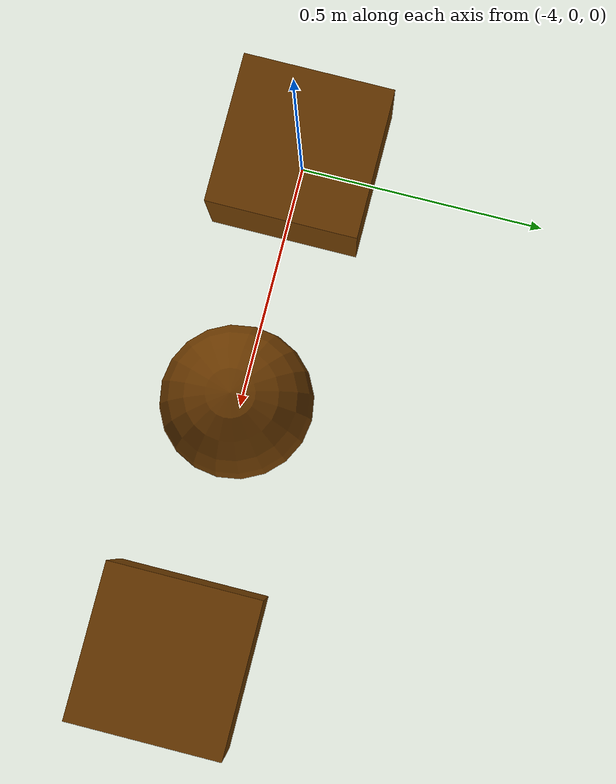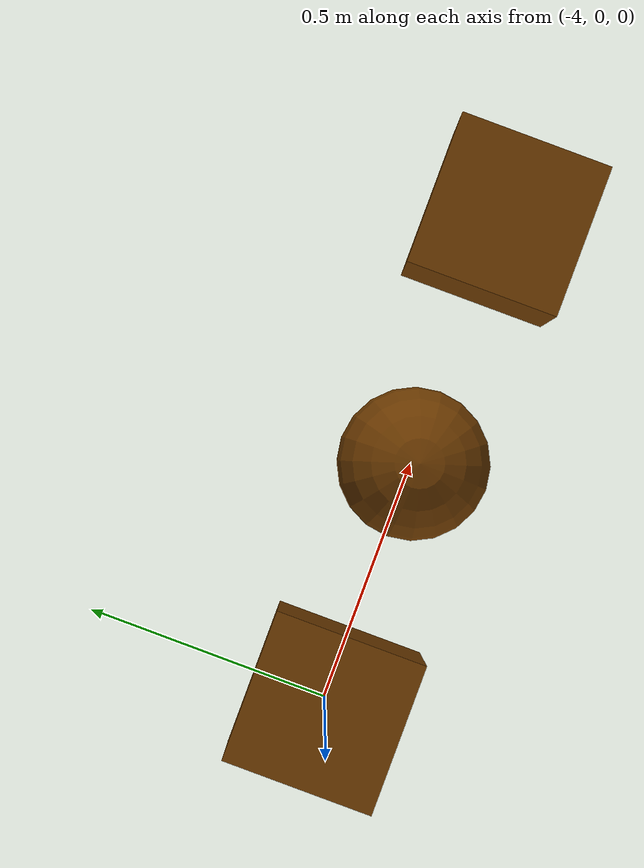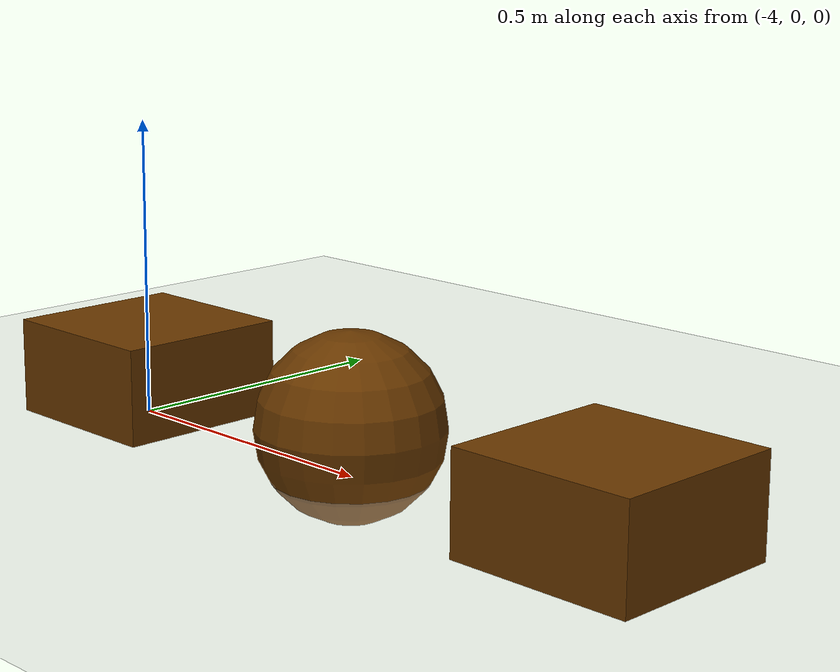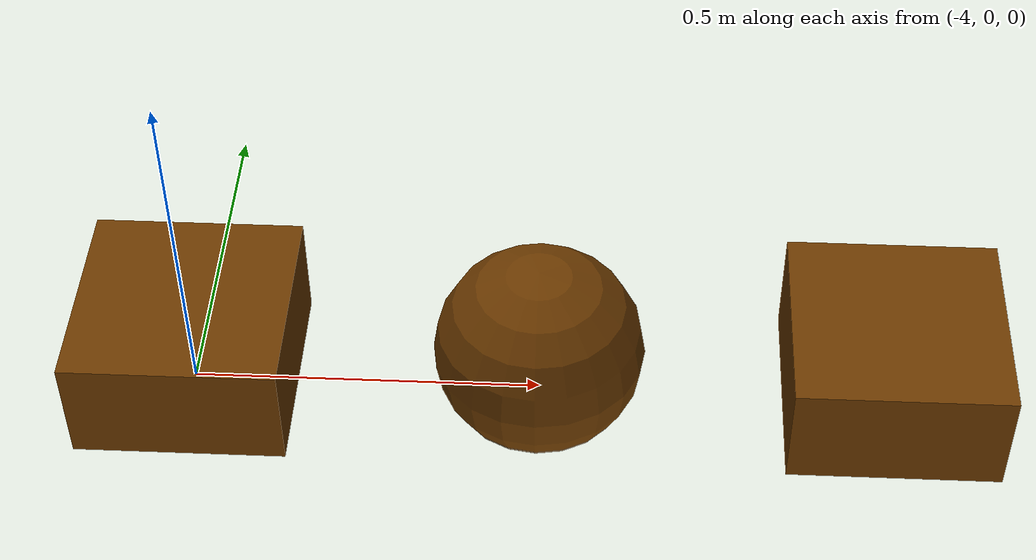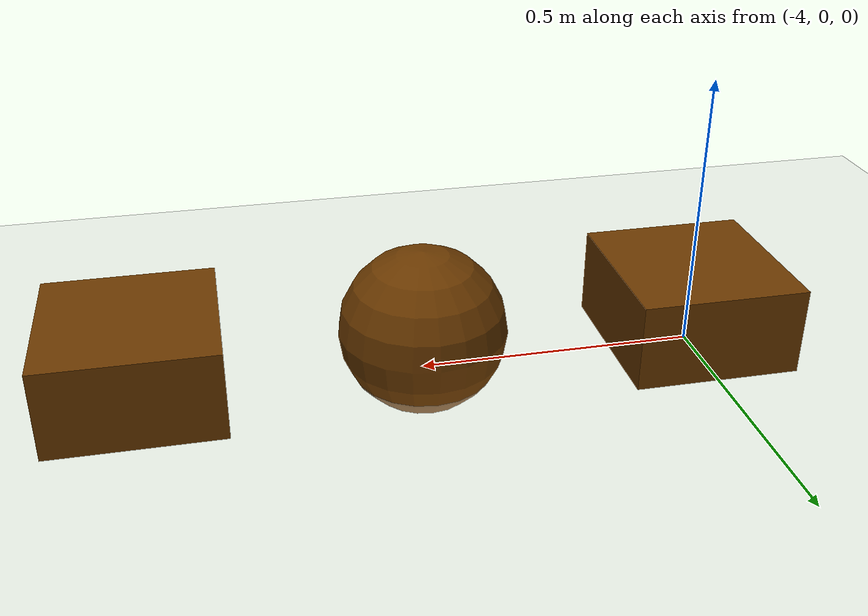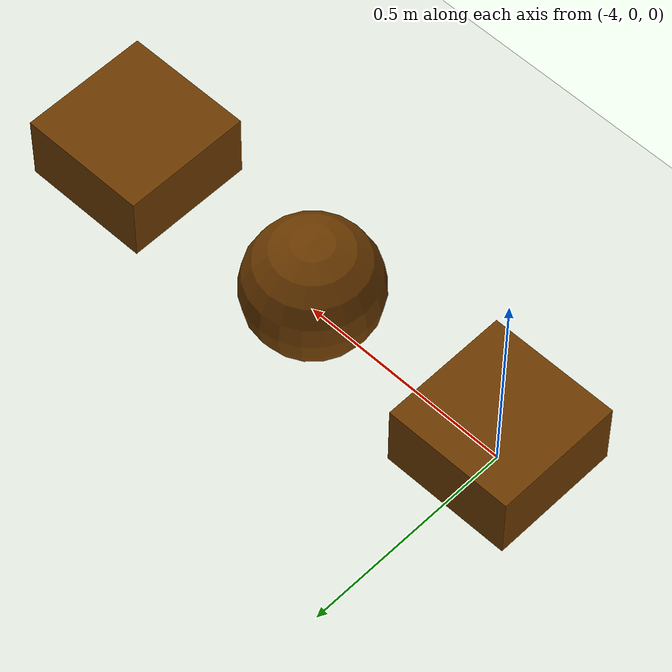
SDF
<?xml version="1.0" ?>
<sdf version="1.5">
    <world name="default">

        <physics type="ode">
            <max_step_size>0.0002</max_step_size>
            <real_time_factor>1</real_time_factor>
            <real_time_update_rate>5000</real_time_update_rate>
            <gravity>0 0 -9.81</gravity>
            <ode>
                <solver>
                    <type>quick</type>
                    <iters>50</iters>
                    <sor>1.3</sor>
                </solver>
                <constraints>
                    <cfm>0.0</cfm>
                    <erp>0.2</erp>
                    <contact_max_correcting_vel>10.0</contact_max_correcting_vel>
                    <contact_surface_layer>0.001</contact_surface_layer>
                </constraints>
            </ode>
        </physics>

        <scene>
            <sky>
                <clouds>
                    <speed>12</speed>
                </clouds>
            </sky>
        </scene>

        <include>
            <uri>model://sun</uri>
        </include>

        <include>
            <uri>model://ground_plane</uri>
        </include>

        <!-- 小石子路 -->
        <model name="box1">
            <static>true</static>
            <link name="box1_link">
                <pose>-4 0 0.08 0 0 0</pose>
                <collision name="box1_collision">
                    <geometry>
                        <box>
                            <size>0.3 0.3 0.16</size>
                        </box>
                    </geometry>
                    <friction>
                        <ode>
                            <mu>1.5</mu>
                        </ode>
                    </friction>
                </collision>
                <visual name="box1_visual">
                    <geometry>
                        <box>
                            <size>0.3 0.3 0.16</size>
                        </box>
                    </geometry>
                    <material>
                        <ambient>0.2 0.2 0.2 1.0</ambient>
                        <diffuse>0.421 0.225 0.0 1.0</diffuse>
                    </material>
                </visual>
                <gravity>true</gravity>
                <self_collide>true</self_collide>
            </link>
        </model>

        <model name="sphere1">
            <static>true</static>
            <link name="sphere1_link">
                <pose>-3.5 0 0.08 0 0 0</pose>
                <collision name="sphere1_collision">
                    <geometry>
                        <sphere>
                            <radius>0.15</radius>
                        </sphere>
                    </geometry>
                    <friction>
                        <ode>
                            <mu>1.5</mu>
                        </ode>
                    </friction>
                </collision>
                <visual name="sphere1_visual">
                    <geometry>
                        <sphere>
                            <radius>0.15</radius>
                        </sphere>
                    </geometry>
                    <material>
                        <ambient>0.2 0.2 0.2 1.0</ambient>
                        <diffuse>0.421 0.225 0.0 1.0</diffuse>
                    </material>
                </visual>
                <gravity>true</gravity>
                <self_collide>true</self_collide>
            </link>
        </model>

        <model name="box2">
            <static>true</static>
            <link name="box2_link">
                <pose>-3 0 0.08 0 0 0</pose>
                <collision name="box2_collision">
                    <geometry>
                        <box>
                            <size>0.3 0.3 0.16</size>
                        </box>
                    </geometry>
                    <friction>
                        <ode>
                            <mu>1.5</mu>
                        </ode>
                    </friction>
                </collision>
                <visual name="box2_visual">
                    <geometry>
                        <box>
                            <size>0.3 0.3 0.16</size>
                        </box>
                    </geometry>
                    <material>
                        <ambient>0.2 0.2 0.2 1.0</ambient>
                        <diffuse>0.421 0.225 0.0 1.0</diffuse>
                    </material>
                </visual>
                <gravity>true</gravity>
                <self_collide>true</self_collide>
            </link>
        </model>

        <!-- 继续添加更多的方块和圆球来扩展小石子路 -->

    </world>
</sdf>
